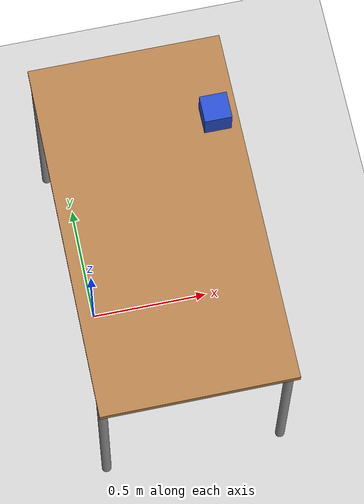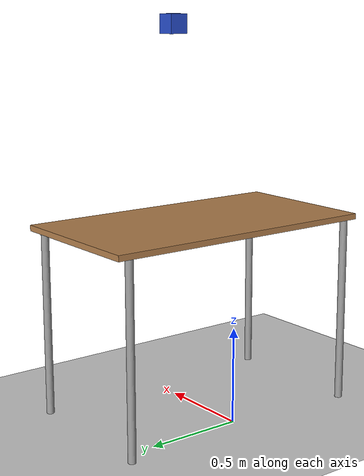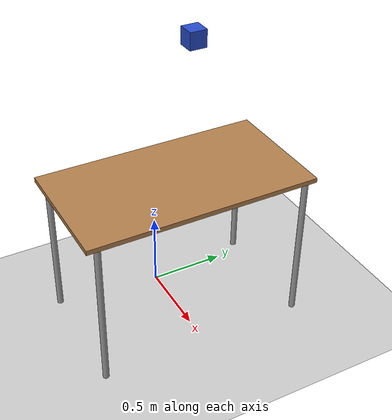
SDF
<?xml version="1.0" ?>
<sdf version="1.5">
  <world name="default">

		<!-- Setup camera initial pose -->
    <gui>
			<camera name="gzclient_camera">
				<pose>1.53 0 2.25 0 0.64 -3.1414</pose>
			</camera>
    </gui>

		<!-- Plugin for model states -->
		<plugin name="gazebo_ros_state" filename="libgazebo_ros_state.so">
      <ros>
        <namespace>/gazebo</namespace>
      </ros>
      <update_rate>1.0</update_rate>
    </plugin>

    <!-- A global light source -->
    <include>
      <uri>model://sun</uri>
	    <pose>0 0 0 0 0 0</pose>
    </include>

    <!-- A ground plane -->
    <include>
      <uri>model://ground_plane</uri>
      <pose>0 0 0 0 0 0</pose>
    </include>

		<!-- Add table -->
		<include>
			<uri>model://table</uri>
			<pose>0.3 0 0 0 0 1.5707</pose>
		</include>

		<!-- Add cube -->
		<include>
			<uri>model://cube</uri>
			<pose>0.5 0 2.0 0 0 0</pose>
		</include>

		<!-- keep barebones scene -->
    <scene>
      <shadows>0</shadows>
    </scene>

  </world>
</sdf>

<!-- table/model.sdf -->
<sdf version="1.5">
  <model name="table">
    <static>true</static>
    <link name="link">
      <collision name="surface">
        <pose>0 0 1.0 0 0 0</pose>
        <geometry>
          <box>
            <size>1.5 0.8 0.03</size>
          </box>
        </geometry>
        <surface>
          <friction>
            <ode>
              <mu>0.6</mu>
              <mu2>0.6</mu2>
            </ode>
          </friction>
        </surface>
      </collision>
      <visual name="visual1">
        <pose>0 0 1.0 0 0 0</pose>
        <geometry>
          <box>
            <size>1.5 0.8 0.03</size>
          </box>
        </geometry>
        <material>
          <script>
            <uri>model://media/materials/scripts/gazebo.material</uri>
            <name>Gazebo/Wood</name>
          </script>
        </material>
      </visual>
      <collision name="front_left_leg">
        <pose>0.68 0.38 0.5 0 0 0</pose>
        <geometry>
          <cylinder>
            <radius>0.02</radius>
            <length>1.0</length>
          </cylinder>
        </geometry>
      </collision>
      <visual name="front_left_leg">
        <pose>0.68 0.38 0.5 0 0 0</pose>
        <geometry>
          <cylinder>
            <radius>0.02</radius>
            <length>1.0</length>
          </cylinder>
        </geometry>
        <material>
          <script>
            <uri>model://media/materials/scripts/gazebo.material</uri>
            <name>Gazebo/Grey</name>
          </script>
        </material>
      </visual>
      <collision name="front_right_leg">
        <pose>0.68 -0.38 0.5 0 0 0</pose>
        <geometry>
          <cylinder>
            <radius>0.02</radius>
            <length>1.0</length>
          </cylinder>
        </geometry>
      </collision>
      <visual name="front_right_leg">
        <pose>0.68 -0.38 0.5 0 0 0</pose>
        <geometry>
          <cylinder>
            <radius>0.02</radius>
            <length>1.0</length>
          </cylinder>
        </geometry>
        <material>
          <script>
            <uri>model://media/materials/scripts/gazebo.material</uri>
            <name>Gazebo/Grey</name>
          </script>
        </material>
      </visual>
      <collision name="back_right_leg">
        <pose>-0.68 -0.38 0.5 0 0 0</pose>
        <geometry>
          <cylinder>
            <radius>0.02</radius>
            <length>1.0</length>
          </cylinder>
        </geometry>
      </collision>
      <visual name="back_right_leg">
        <pose>-0.68 -0.38 0.5 0 0 0</pose>
        <geometry>
          <cylinder>
            <radius>0.02</radius>
            <length>1.0</length>
          </cylinder>
        </geometry>
        <material>
          <script>
            <uri>model://media/materials/scripts/gazebo.material</uri>
            <name>Gazebo/Grey</name>
          </script>
        </material>
      </visual>
      <collision name="back_left_leg">
        <pose>-0.68 0.38 0.5 0 0 0</pose>
        <geometry>
          <cylinder>
            <radius>0.02</radius>
            <length>1.0</length>
          </cylinder>
        </geometry>
      </collision>
      <visual name="back_left_leg">
        <pose>-0.68 0.38 0.5 0 0 0</pose>
        <geometry>
          <cylinder>
            <radius>0.02</radius>
            <length>1.0</length>
          </cylinder>
        </geometry>
        <material>
          <script>
            <uri>model://media/materials/scripts/gazebo.material</uri>
            <name>Gazebo/Grey</name>
          </script>
        </material>
      </visual>
    </link>
  </model>
</sdf>

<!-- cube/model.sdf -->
<sdf version='1.7'>
  <model name='cube'>
	  <static>false</static>
    <link name='link'>
      <inertial>
        <pose>0 0 0.0 0 -0 0</pose>
        <mass>0.5</mass>
        <inertia>
          <ixx>0.00055575</ixx>
          <ixy>0</ixy>
          <ixz>0</ixz>
          <iyy>0.00055575</iyy>
          <iyz>0</iyz>
          <izz>0.0001755</izz>
        </inertia>
      </inertial>
      <pose>0 0 0 0 -0 0</pose>
      <visual name='visual'>
        <pose>0 0 0 0 -0 0</pose>
        <geometry>
					<box>
						<size>0.1 0.1 0.1</size>
					</box>
        </geometry>
				<material>
					<script>
						<uri>file://media/materials/scripts/gazebo.material</uri>
						<name>Gazebo/Blue</name>
					</script>
				</material>
      </visual>
      <collision name='base_link_collision'>
        <pose>0 0 0 0 0 0</pose>
        <geometry>
					<box>
						<size>0.1 0.1 0.1</size>
					</box>
        </geometry>
        <surface>
          <friction>
            <ode>
              <mu>1000.0</mu>
              <mu2>1000.0</mu2>
            </ode>
          </friction>
          <contact>
            <ode>
							<max_vel>0.1</max_vel>
							<soft_cfm>0.8</soft_cfm>
							<soft_erp>0.8</soft_erp>
							<kd>2500</kd>
							<kp>10</kp>
							<min_depth>0.001</min_depth>
            </ode>
          </contact>
        </surface>
      </collision>
    </link>
  </model>
</sdf>
